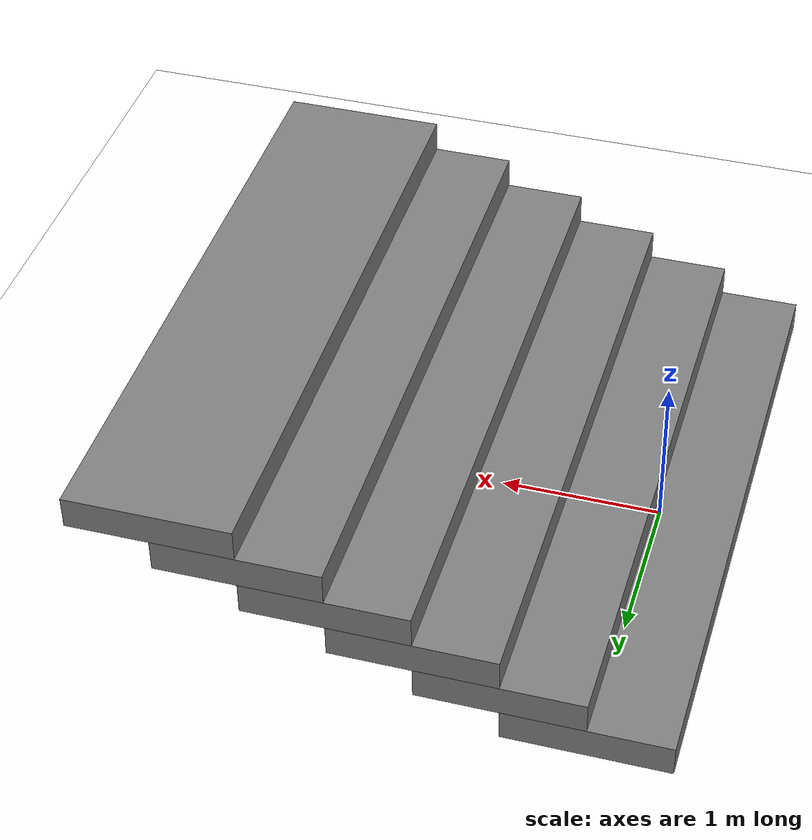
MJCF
<mujoco model="stairs">
  <visual>
    <headlight ambient="0 0 0" diffuse="0 0 0" specular="1 1 1"/>
    <quality shadowsize="8192"/>
  </visual>

  <asset>
    <material name="floor" reflectance=".1"/>
  </asset>

  <default>

  </default>

  <worldbody>
    <light pos="4 -4 3" dir="-2 2 -1.5" diffuse=".6 .6 .6"/>
    <light pos="-2 -4 3" dir="1 2 -1.5" diffuse=".6 .6 .6"/>
    <geom type="plane" size="5 5 .01" rgba="1 1 1 1" material="floor"/>

    <body name="stairs" pos="0 0 0">
    <geom type="box" size="0.5 2 0.1" pos="0 0 0.1" />
    <geom type="box" size="0.5 2 0.1" pos="0.5 0 0.3" />
    <geom type="box" size="0.5 2 0.1" pos="1 0 0.5" />
    <geom type="box" size="0.5 2 0.1" pos="1.5 0 0.7" />
    <geom type="box" size="0.5 2 0.1" pos="2 0 0.9" />
    <geom type="box" size="0.5 2 0.1" pos="2.5 0 1.1" />
    </body>

  </worldbody>
</mujoco>
